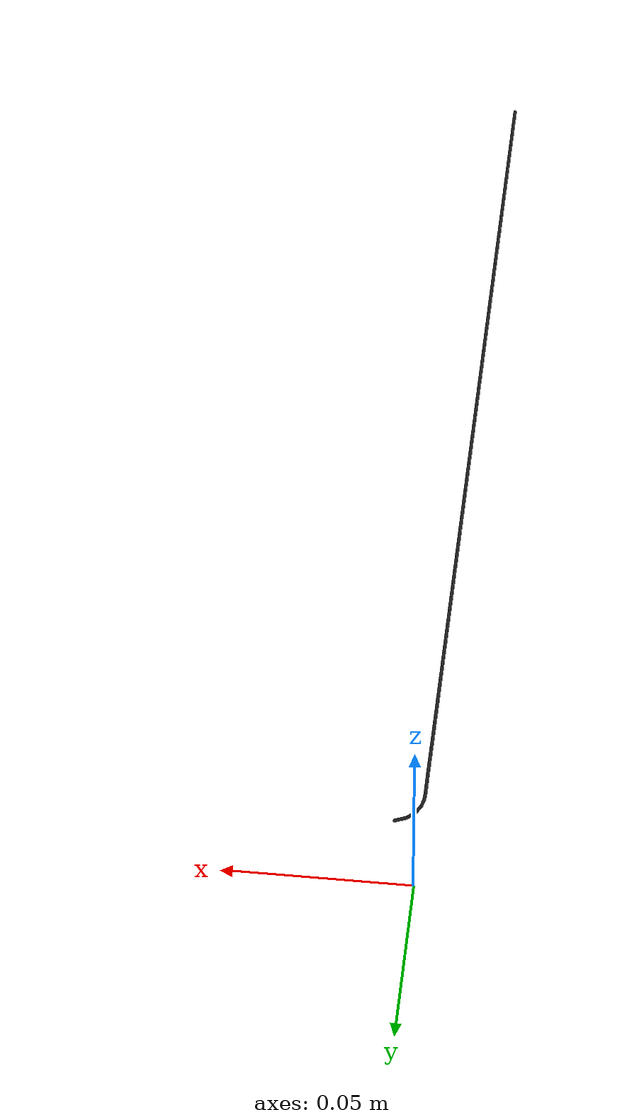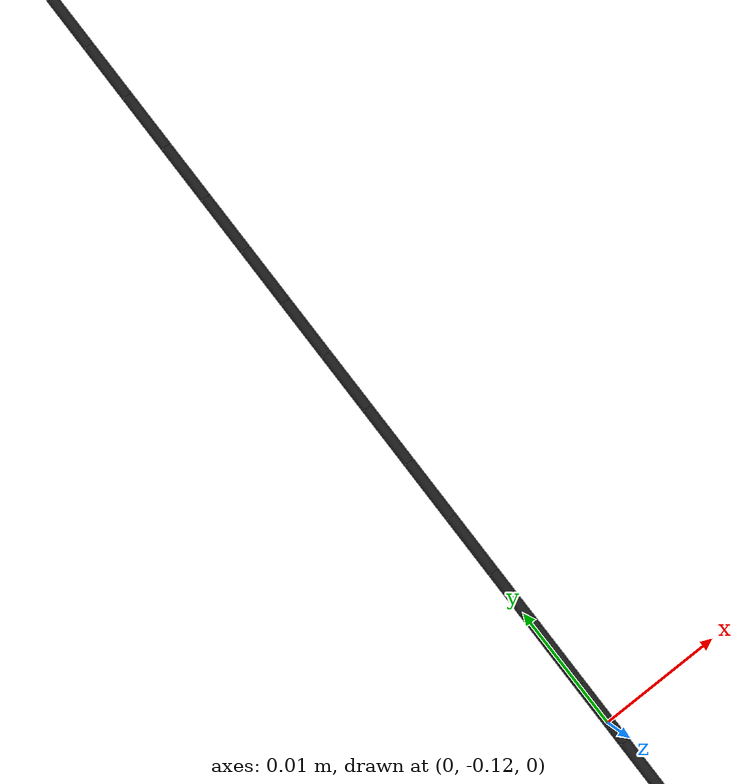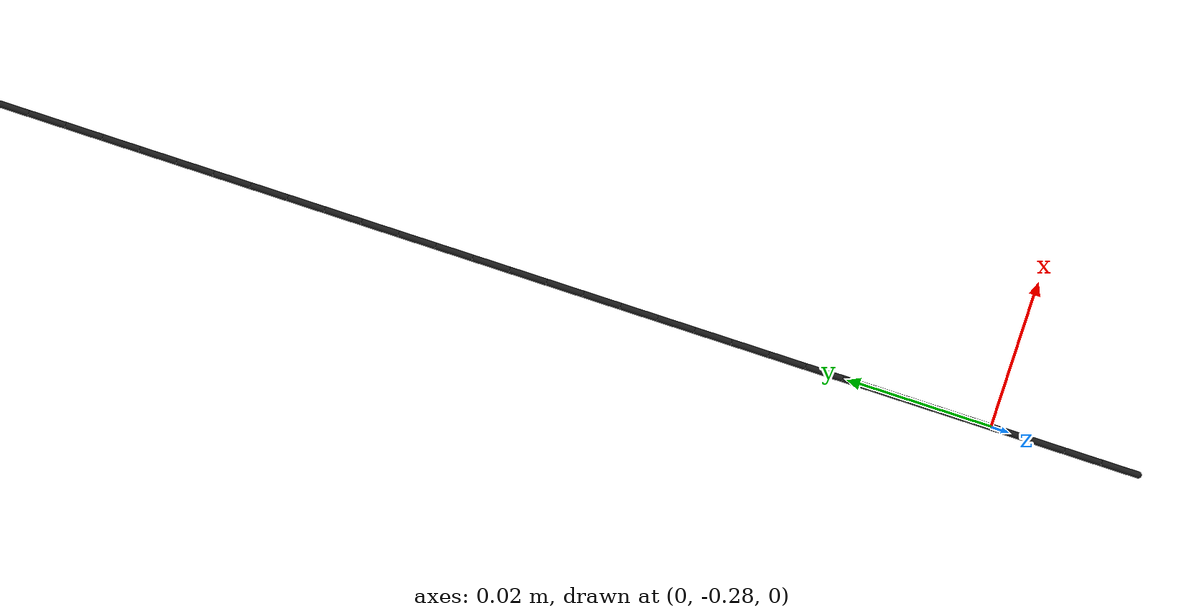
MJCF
<mujoco model="guidewire">
    <compiler angle="radian"/>

    <default>
        <default class="guidewire_tip">
            <geom type="capsule" condim="3" margin="0.003"/>
            <default class="guidewire">
                <geom rgba="0.1 0.1 0.1 1"/>
            </default>
            <default class="tip">
                <geom rgba="0.1 0.1 0.1 1"/>
            </default>
        </default>
    </default>

    <extension>
        <plugin plugin="mujoco.elasticity.cable">
            <instance name="compositeguidewire">
                <config key="bend" value="2e8"/>
                <config key="vmax" value="0.05"/>
            </instance>
            <instance name="compositetip">
                <config key="bend" value="5e6"/>
                <config key="vmax" value="0.05"/>
            </instance>
        </plugin>
    </extension>

    <actuator>
        <general name="slider" joint="slider" ctrlrange="-0.18 0.18" forcerange="-0.1 0.1" dyntype="filterexact" dynprm="0.1 0 0 0 0 0 0 0 0 0" biastype="affine" gainprm="60" biasprm="0 -60"/>
        <general name="rotator" joint="rotator" forcerange="-10 10" dyntype="filterexact" dynprm="0.1 0 0 0 0 0 0 0 0 0" biastype="affine" gainprm="100" biasprm="0 -100"/>
    </actuator>

    <custom>
        <text name="composite_guidewire" data="rope_guidewire"/>
        <text name="composite_tip" data="rope_tip"/>
    </custom>

    <worldbody>
        <frame>
            <body name="guidewire" childclass="guidewire" pos="0 -0.3 0.002" quat="0.707107 0 0 0.707107">
                <joint name="slider" pos="0 0 0" axis="1 0 0" type="slide" limited="true" range="-0.2 0.2" damping="5"/>
                <joint name="rotator" pos="0 0 0" axis="1 0 0" damping="5"/>
                <body name="guidewireB_first">
                    <geom name="guidewireG0" size="0.000445 0.00255102" pos="0.00255102 0 0" quat="0.707107 0 -0.707107 0" />
                    <site name="guidewireS_first" pos="0 0 0" group="3"/>
                    <plugin instance="compositeguidewire"/>
                    <body name="guidewireB_1" pos="0.00510204 0 0">
                        <joint name="guidewireJ_1" pos="0 0 0" type="ball" group="3" actuatorfrclimited="false" damping="0.015"/>
                        <geom name="guidewireG1" size="0.000445 0.00255102" pos="0.00255102 0 0" quat="0.707107 0 -0.707107 0"  />
                        <plugin instance="compositeguidewire"/>
                        <body name="guidewireB_2" pos="0.00510204 0 0">
                            <joint name="guidewireJ_2" pos="0 0 0" type="ball" group="3" actuatorfrclimited="false" damping="0.015"/>
                            <geom name="guidewireG2" size="0.000445 0.00255102" pos="0.00255102 0 0" quat="0.707107 0 -0.707107 0" />
                            <plugin instance="compositeguidewire"/>
                            <body name="guidewireB_3" pos="0.00510204 0 0">
                                <joint name="guidewireJ_3" pos="0 0 0" type="ball" group="3" actuatorfrclimited="false" damping="0.015"/>
                                <geom name="guidewireG3" size="0.000445 0.00255102" pos="0.00255102 0 0" quat="0.707107 0 -0.707107 0"/>
                                <plugin instance="compositeguidewire"/>
                                <body name="guidewireB_4" pos="0.00510204 0 0">
                                    <joint name="guidewireJ_4" pos="0 0 0" type="ball" group="3" actuatorfrclimited="false" damping="0.015"/>
                                    <geom name="guidewireG4" size="0.000445 0.00255102" pos="0.00255102 0 0" quat="0.707107 0 -0.707107 0"/>
                                    <plugin instance="compositeguidewire"/>
                                    <body name="guidewireB_5" pos="0.00510204 0 0">
                                        <joint name="guidewireJ_5" pos="0 0 0" type="ball" group="3" actuatorfrclimited="false" damping="0.015"/>
                                        <geom name="guidewireG5" size="0.000445 0.00255102" pos="0.00255102 0 0" quat="0.707107 0 -0.707107 0"/>
                                        <plugin instance="compositeguidewire"/>
                                        <body name="guidewireB_6" pos="0.00510204 0 0">
                                            <joint name="guidewireJ_6" pos="0 0 0" type="ball" group="3" actuatorfrclimited="false" damping="0.015"/>
                                            <geom name="guidewireG6" size="0.000445 0.00255102" pos="0.00255102 0 0" quat="0.707107 0 -0.707107 0"/>
                                            <plugin instance="compositeguidewire"/>
                                            <body name="guidewireB_7" pos="0.00510204 0 0">
                                                <joint name="guidewireJ_7" pos="0 0 0" type="ball" group="3" actuatorfrclimited="false" damping="0.015"/>
                                                <geom name="guidewireG7" size="0.000445 0.00255102" pos="0.00255102 0 0" quat="0.707107 0 -0.707107 0"/>
                                                <plugin instance="compositeguidewire"/>
                                                <body name="guidewireB_8" pos="0.00510204 0 0">
                                                    <joint name="guidewireJ_8" pos="0 0 0" type="ball" group="3" actuatorfrclimited="false" damping="0.015"/>
                                                    <geom name="guidewireG8" size="0.000445 0.00255102" pos="0.00255102 0 0" quat="0.707107 0 -0.707107 0"/>
                                                    <plugin instance="compositeguidewire"/>
                                                    <body name="guidewireB_9" pos="0.00510204 0 0">
                                                        <joint name="guidewireJ_9" pos="0 0 0" type="ball" group="3" actuatorfrclimited="false" damping="0.015"/>
                                                        <geom name="guidewireG9" size="0.000445 0.00255102" pos="0.00255102 0 0" quat="0.707107 0 -0.707107 0"/>
                                                        <plugin instance="compositeguidewire"/>
                                                        <body name="guidewireB_10" pos="0.00510204 0 0">
                                                            <joint name="guidewireJ_10" pos="0 0 0" type="ball" group="3" actuatorfrclimited="false" damping="0.015"/>
                                                            <geom name="guidewireG10" size="0.000445 0.00255102" pos="0.00255102 0 0" quat="0.707107 0 -0.707107 0"/>
                                                            <plugin instance="compositeguidewire"/>
                                                            <body name="guidewireB_11" pos="0.00510204 0 0">
                                                                <joint name="guidewireJ_11" pos="0 0 0" type="ball" group="3" actuatorfrclimited="false" damping="0.015"/>
                                                                <geom name="guidewireG11" size="0.000445 0.00255102" pos="0.00255102 0 0" quat="0.707107 0 -0.707107 0"/>
                                                                <plugin instance="compositeguidewire"/>
                                                                <body name="guidewireB_12" pos="0.00510204 0 0">
                                                                    <joint name="guidewireJ_12" pos="0 0 0" type="ball" group="3" actuatorfrclimited="false" damping="0.015"/>
                                                                    <geom name="guidewireG12" size="0.000445 0.00255102" pos="0.00255102 0 0" quat="0.707107 0 -0.707107 0"/>
                                                                    <plugin instance="compositeguidewire"/>
                                                                    <body name="guidewireB_13" pos="0.00510204 0 0">
                                                                        <joint name="guidewireJ_13" pos="0 0 0" type="ball" group="3" actuatorfrclimited="false" damping="0.015"/>
                                                                        <geom name="guidewireG13" size="0.000445 0.00255102" pos="0.00255102 0 0" quat="0.707107 0 -0.707107 0"/>
                                                                        <plugin instance="compositeguidewire"/>
                                                                        <body name="guidewireB_14" pos="0.00510205 0 0">
                                                                            <joint name="guidewireJ_14" pos="0 0 0" type="ball" group="3" actuatorfrclimited="false" damping="0.015"/>
                                                                            <geom name="guidewireG14" size="0.000445 0.00255102" pos="0.00255102 0 0" quat="0.707107 0 -0.707107 0"/>
                                                                            <plugin instance="compositeguidewire"/>
                                                                            <body name="guidewireB_15" pos="0.00510204 0 0">
                                                                                <joint name="guidewireJ_15" pos="0 0 0" type="ball" group="3" actuatorfrclimited="false" damping="0.015"/>
                                                                                <geom name="guidewireG15" size="0.000445 0.00255102" pos="0.00255102 0 0" quat="0.707107 0 -0.707107 0"/>
                                                                                <plugin instance="compositeguidewire"/>
                                                                                <body name="guidewireB_16" pos="0.00510204 0 0">
                                                                                    <joint name="guidewireJ_16" pos="0 0 0" type="ball" group="3" actuatorfrclimited="false" damping="0.015"/>
                                                                                    <geom name="guidewireG16" size="0.000445 0.00255102" pos="0.00255102 0 0" quat="0.707107 0 -0.707107 0" />
                                                                                    <plugin instance="compositeguidewire"/>
                                                                                    <body name="guidewireB_17" pos="0.00510205 0 0">
                                                                                        <joint name="guidewireJ_17" pos="0 0 0" type="ball" group="3" actuatorfrclimited="false" damping="0.015"/>
                                                                                        <geom name="guidewireG17" size="0.000445 0.00255102" pos="0.00255102 0 0" quat="0.707107 0 -0.707107 0"/>
                                                                                        <plugin instance="compositeguidewire"/>
                                                                                        <body name="guidewireB_18" pos="0.00510204 0 0">
                                                                                            <joint name="guidewireJ_18" pos="0 0 0" type="ball" group="3" actuatorfrclimited="false" damping="0.015"/>
                                                                                            <geom name="guidewireG18" size="0.000445 0.00255102" pos="0.00255102 0 0" quat="0.707107 0 -0.707107 0" />
                                                                                            <plugin instance="compositeguidewire"/>
                                                                                            <body name="guidewireB_19" pos="0.00510204 0 0">
                                                                                                <joint name="guidewireJ_19" pos="0 0 0" type="ball" group="3" actuatorfrclimited="false" damping="0.015"/>
                                                                                                <geom name="guidewireG19" size="0.000445 0.00255102" pos="0.00255102 0 0" quat="0.707107 0 -0.707107 0"/>
                                                                                                <plugin instance="compositeguidewire"/>
                                                                                                <body name="guidewireB_20" pos="0.00510205 0 0">
                                                                                                    <joint name="guidewireJ_20" pos="0 0 0" type="ball" group="3" actuatorfrclimited="false" damping="0.015"/>
                                                                                                    <geom name="guidewireG20" size="0.000445 0.00255102" pos="0.00255102 0 0" quat="0.707107 0 -0.707107 0"/>
                                                                                                    <plugin instance="compositeguidewire"/>
                                                                                                    <body name="guidewireB_21" pos="0.00510204 0 0">
                                                                                                        <joint name="guidewireJ_21" pos="0 0 0" type="ball" group="3" actuatorfrclimited="false" damping="0.015"/>
                                                                                                        <geom name="guidewireG21" size="0.000445 0.00255102" pos="0.00255102 0 0" quat="0.707107 0 -0.707107 0" />
                                                                                                        <plugin instance="compositeguidewire"/>
                                                                                                        <body name="guidewireB_22" pos="0.00510204 0 0">
                                                                                                            <joint name="guidewireJ_22" pos="0 0 0" type="ball" group="3" actuatorfrclimited="false" damping="0.015"/>
                                                                                                            <geom name="guidewireG22" size="0.000445 0.00255102" pos="0.00255102 0 0" quat="0.707107 0 -0.707107 0"/>
                                                                                                            <plugin instance="compositeguidewire"/>
                                                                                                            <body name="guidewireB_23" pos="0.00510205 0 0">
                                                                                                                <joint name="guidewireJ_23" pos="0 0 0" type="ball" group="3" actuatorfrclimited="false" damping="0.015"/>
                                                                                                                <geom name="guidewireG23" size="0.000445 0.00255102" pos="0.00255102 0 0" quat="0.707107 0 -0.707107 0" />
                                                                                                                <plugin instance="compositeguidewire"/>
                                                                                                                <body name="guidewireB_24" pos="0.00510204 0 0">
                                                                                                                    <joint name="guidewireJ_24" pos="0 0 0" type="ball" group="3" actuatorfrclimited="false" damping="0.015"/>
                                                                                                                    <geom name="guidewireG24" size="0.000445 0.00255102" pos="0.00255102 0 0" quat="0.707107 0 -0.707107 0"/>
                                                                                                                    <plugin instance="compositeguidewire"/>
                                                                                                                    <body name="guidewireB_25" pos="0.00510204 0 0">
                                                                                                                        <joint name="guidewireJ_25" pos="0 0 0" type="ball" group="3" actuatorfrclimited="false" damping="0.015"/>
                                                                                                                        <geom name="guidewireG25" size="0.000445 0.00255102" pos="0.00255102 0 0" quat="0.707107 0 -0.707107 0" />
                                                                                                                        <plugin instance="compositeguidewire"/>
                                                                                                                        <body name="guidewireB_26" pos="0.00510204 0 0">
                                                                                                                            <joint name="guidewireJ_26" pos="0 0 0" type="ball" group="3" actuatorfrclimited="false" damping="0.015"/>
                                                                                                                            <geom name="guidewireG26" size="0.000445 0.00255102" pos="0.00255102 0 0" quat="0.707107 0 -0.707107 0"/>
                                                                                                                            <plugin instance="compositeguidewire"/>
                                                                                                                            <body name="guidewireB_27" pos="0.00510204 0 0">
                                                                                                                                <joint name="guidewireJ_27" pos="0 0 0" type="ball" group="3" actuatorfrclimited="false" damping="0.015"/>
                                                                                                                                <geom name="guidewireG27" size="0.000445 0.00255103" pos="0.00255103 0 0" quat="0.707107 0 -0.707107 0"/>
                                                                                                                                <plugin instance="compositeguidewire"/>
                                                                                                                                <body name="guidewireB_28" pos="0.00510205 0 0">
                                                                                                                                    <joint name="guidewireJ_28" pos="0 0 0" type="ball" group="3" actuatorfrclimited="false" damping="0.015"/>
                                                                                                                                    <geom name="guidewireG28" size="0.000445 0.00255102" pos="0.00255102 0 0" quat="0.707107 0 -0.707107 0"/>
                                                                                                                                    <plugin instance="compositeguidewire"/>
                                                                                                                                    <body name="guidewireB_29" pos="0.00510204 0 0">
                                                                                                                                        <joint name="guidewireJ_29" pos="0 0 0" type="ball" group="3" actuatorfrclimited="false" damping="0.015"/>
                                                                                                                                        <geom name="guidewireG29" size="0.000445 0.00255102" pos="0.00255102 0 0" quat="0.707107 0 -0.707107 0" />
                                                                                                                                        <plugin instance="compositeguidewire"/>
                                                                                                                                        <body name="guidewireB_30" pos="0.00510204 0 0">
                                                                                                                                            <joint name="guidewireJ_30" pos="0 0 0" type="ball" group="3" actuatorfrclimited="false" damping="0.015"/>
                                                                                                                                            <geom name="guidewireG30" size="0.000445 0.00255102" pos="0.00255102 0 0" quat="0.707107 0 -0.707107 0" />
                                                                                                                                            <plugin instance="compositeguidewire"/>
                                                                                                                                            <body name="guidewireB_31" pos="0.00510204 0 0">
                                                                                                                                                <joint name="guidewireJ_31" pos="0 0 0" type="ball" group="3" actuatorfrclimited="false" damping="0.015"/>
                                                                                                                                                <geom name="guidewireG31" size="0.000445 0.00255102" pos="0.00255102 0 0" quat="0.707107 0 -0.707107 0"/>
                                                                                                                                                <plugin instance="compositeguidewire"/>
                                                                                                                                                <body name="guidewireB_32" pos="0.00510204 0 0">
                                                                                                                                                    <joint name="guidewireJ_32" pos="0 0 0" type="ball" group="3" actuatorfrclimited="false" damping="0.015"/>
                                                                                                                                                    <geom name="guidewireG32" size="0.000445 0.00255102" pos="0.00255102 0 0" quat="0.707107 0 -0.707107 0" />
                                                                                                                                                    <plugin instance="compositeguidewire"/>
                                                                                                                                                    <body name="guidewireB_33" pos="0.00510204 0 0">
                                                                                                                                                        <joint name="guidewireJ_33" pos="0 0 0" type="ball" group="3" actuatorfrclimited="false" damping="0.015"/>
                                                                                                                                                        <geom name="guidewireG33" size="0.000445 0.00255103" pos="0.00255103 0 0" quat="0.707107 0 -0.707107 0" />
                                                                                                                                                        <plugin instance="compositeguidewire"/>
                                                                                                                                                        <body name="guidewireB_34" pos="0.00510205 0 0">
                                                                                                                                                            <joint name="guidewireJ_34" pos="0 0 0" type="ball" group="3" actuatorfrclimited="false" damping="0.015"/>
                                                                                                                                                            <geom name="guidewireG34" size="0.000445 0.00255102" pos="0.00255102 0 0" quat="0.707107 0 -0.707107 0"/>
                                                                                                                                                            <plugin instance="compositeguidewire"/>
                                                                                                                                                            <body name="guidewireB_35" pos="0.00510204 0 0">
                                                                                                                                                                <joint name="guidewireJ_35" pos="0 0 0" type="ball" group="3" actuatorfrclimited="false" damping="0.015"/>
                                                                                                                                                                <geom name="guidewireG35" size="0.000445 0.00255102" pos="0.00255102 0 0" quat="0.707107 0 -0.707107 0"/>
                                                                                                                                                                <plugin instance="compositeguidewire"/>
                                                                                                                                                                <body name="guidewireB_36" pos="0.00510204 0 0">
                                                                                                                                                                    <joint name="guidewireJ_36" pos="0 0 0" type="ball" group="3" actuatorfrclimited="false" damping="0.015"/>
                                                                                                                                                                    <geom name="guidewireG36" size="0.000445 0.00255102" pos="0.00255102 0 0" quat="0.707107 0 -0.707107 0" />
                                                                                                                                                                    <plugin instance="compositeguidewire"/>
                                                                                                                                                                    <body name="guidewireB_37" pos="0.00510204 0 0">
                                                                                                                                                                        <joint name="guidewireJ_37" pos="0 0 0" type="ball" group="3" actuatorfrclimited="false" damping="0.015"/>
                                                                                                                                                                        <geom name="guidewireG37" size="0.000445 0.00255102" pos="0.00255102 0 0" quat="0.707107 0 -0.707107 0" />
                                                                                                                                                                        <plugin instance="compositeguidewire"/>
                                                                                                                                                                        <body name="guidewireB_38" pos="0.00510204 0 0">
                                                                                                                                                                            <joint name="guidewireJ_38" pos="0 0 0" type="ball" group="3" actuatorfrclimited="false" damping="0.015"/>
                                                                                                                                                                            <geom name="guidewireG38" size="0.000445 0.00255102" pos="0.00255102 0 0" quat="0.707107 0 -0.707107 0" />
                                                                                                                                                                            <plugin instance="compositeguidewire"/>
                                                                                                                                                                            <body name="guidewireB_39" pos="0.00510204 0 0">
                                                                                                                                                                                <joint name="guidewireJ_39" pos="0 0 0" type="ball" group="3" actuatorfrclimited="false" damping="0.015"/>
                                                                                                                                                                                <geom name="guidewireG39" size="0.000445 0.00255103" pos="0.00255103 0 0" quat="0.707107 0 -0.707107 0"/>
                                                                                                                                                                                <plugin instance="compositeguidewire"/>
                                                                                                                                                                                <body name="guidewireB_40" pos="0.00510205 0 0">
                                                                                                                                                                                    <joint name="guidewireJ_40" pos="0 0 0" type="ball" group="3" actuatorfrclimited="false" damping="0.015"/>
                                                                                                                                                                                    <geom name="guidewireG40" size="0.000445 0.00255102" pos="0.00255102 0 0" quat="0.707107 0 -0.707107 0"/>
                                                                                                                                                                                    <plugin instance="compositeguidewire"/>
                                                                                                                                                                                    <body name="guidewireB_41" pos="0.00510204 0 0">
                                                                                                                                                                                        <joint name="guidewireJ_41" pos="0 0 0" type="ball" group="3" actuatorfrclimited="false" damping="0.015"/>
                                                                                                                                                                                        <geom name="guidewireG41" size="0.000445 0.00255102" pos="0.00255102 0 0" quat="0.707107 0 -0.707107 0" />
                                                                                                                                                                                        <plugin instance="compositeguidewire"/>
                                                                                                                                                                                        <body name="guidewireB_42" pos="0.00510204 0 0">
                                                                                                                                                                                            <joint name="guidewireJ_42" pos="0 0 0" type="ball" group="3" actuatorfrclimited="false" damping="0.015"/>
                                                                                                                                                                                            <geom name="guidewireG42" size="0.000445 0.00255102" pos="0.00255102 0 0" quat="0.707107 0 -0.707107 0"/>
                                                                                                                                                                                            <plugin instance="compositeguidewire"/>
                                                                                                                                                                                            <body name="guidewireB_43" pos="0.00510204 0 0">
                                                                                                                                                                                                <joint name="guidewireJ_43" pos="0 0 0" type="ball" group="3" actuatorfrclimited="false" damping="0.015"/>
                                                                                                                                                                                                <geom name="guidewireG43" size="0.000445 0.00255102" pos="0.00255102 0 0" quat="0.707107 0 -0.707107 0"/>
                                                                                                                                                                                                <plugin instance="compositeguidewire"/>
                                                                                                                                                                                                <body name="guidewireB_44" pos="0.00510204 0 0">
                                                                                                                                                                                                    <joint name="guidewireJ_44" pos="0 0 0" type="ball" group="3" actuatorfrclimited="false" damping="0.015"/>
                                                                                                                                                                                                    <geom name="guidewireG44" size="0.000445 0.00255102" pos="0.00255102 0 0" quat="0.707107 0 -0.707107 0"/>
                                                                                                                                                                                                    <plugin instance="compositeguidewire"/>
                                                                                                                                                                                                    <body name="guidewireB_45" pos="0.00510204 0 0">
                                                                                                                                                                                                        <joint name="guidewireJ_45" pos="0 0 0" type="ball" group="3" actuatorfrclimited="false" damping="0.015"/>
                                                                                                                                                                                                        <geom name="guidewireG45" size="0.000445 0.00255103" pos="0.00255103 0 0" quat="0.707107 0 -0.707107 0"/>
                                                                                                                                                                                                        <plugin instance="compositeguidewire"/>
                                                                                                                                                                                                        <body name="guidewireB_46" pos="0.00510205 0 0">
                                                                                                                                                                                                            <joint name="guidewireJ_46" pos="0 0 0" type="ball" group="3" actuatorfrclimited="false" damping="0.015"/>
                                                                                                                                                                                                            <geom name="guidewireG46" size="0.000445 0.00255102" pos="0.00255102 0 0" quat="0.707107 0 -0.707107 0" />
                                                                                                                                                                                                            <plugin instance="compositeguidewire"/>
                                                                                                                                                                                                            <body name="guidewireB_47" pos="0.00510204 0 0">
                                                                                                                                                                                                                <joint name="guidewireJ_47" pos="0 0 0" type="ball" group="3" actuatorfrclimited="false" damping="0.015"/>
                                                                                                                                                                                                                <geom name="guidewireG47" size="0.000445 0.00255102" pos="0.00255102 0 0" quat="0.707107 0 -0.707107 0" />
                                                                                                                                                                                                                <plugin instance="compositeguidewire"/>
                                                                                                                                                                                                                <body name="guidewireB_last" pos="0.00510204 0 0">
                                                                                                                                                                                                                    <joint name="guidewireJ_last" pos="0 0 0" type="ball" group="3" actuatorfrclimited="false" damping="0.015"/>
                                                                                                                                                                                                                    <geom name="guidewireG48" size="0.000445 0.00255102" pos="0.00255102 0 0" quat="0.707107 0 -0.707107 0"/>
                                                                                                                                                                                                                    <site name="guidewireS_last" pos="0.00510204 0 0" group="3"/>
                                                                                                                                                                                                                    <plugin instance="compositeguidewire"/>
                                                                                                                                                                                                                    <body name="tip" childclass="tip" pos="0.00510204 0 0" quat="0 -0.707107  -0.707107 0">
                                                                                                                                                                                                                        <plugin instance="compositetip"/>
                                                                                                                                                                                                                        <body name="tipB_first" pos="-0.007 0.03 0" quat="0 0.978382 -0.206808 0">
                                                                                                                                                                                                                            <joint name="tipJ_first" pos="0 0 0" type="ball" group="3" actuatorfrclimited="false" damping="0.015"/>
                                                                                                                                                                                                                            <geom name="tipG0" size="0.000445 0.00167913" pos="0.00167913 0 0" quat="0.707107 0 -0.707107 0"/>
                                                                                                                                                                                                                            <site name="tipS_first" pos="0 0 0" group="3"/>
                                                                                                                                                                                                                            <plugin instance="compositetip"/>
                                                                                                                                                                                                                            <body name="tipB_1" pos="0.00335826 0 0" quat="0.984832 0 0 0.173512">
                                                                                                                                                                                                                                <joint name="tipJ_1" pos="0 0 0" type="ball" group="3" actuatorfrclimited="false" damping="0.015"/>
                                                                                                                                                                                                                                <geom name="tipG1" size="0.000445 0.0014152" pos="0.0014152 0 0" quat="0.707107 0 -0.707107 0"/>
                                                                                                                                                                                                                                <plugin instance="compositetip"/>
                                                                                                                                                                                                                                <body name="tipB_2" pos="0.00283041 0 0" quat="0.987304 0 0 0.15884">
                                                                                                                                                                                                                                    <joint name="tipJ_2" pos="0 0 0" type="ball" group="3" actuatorfrclimited="false" damping="0.015"/>
                                                                                                                                                                                                                                    <geom name="tipG2" size="0.000445 0.0012901" pos="0.0012901 0 0" quat="0.707107 0 -0.707107 0"/>
                                                                                                                                                                                                                                    <plugin instance="compositetip"/>
                                                                                                                                                                                                                                    <body name="tipB_3" pos="0.00258019 0 0" quat="0.992355 0 0 0.12342">
                                                                                                                                                                                                                                        <joint name="tipJ_3" pos="0 0 0" type="ball" group="3" actuatorfrclimited="false" damping="0.015"/>
                                                                                                                                                                                                                                        <geom name="tipG3" size="0.000445 0.0011939" pos="0.0011939 0 0" quat="0.707107 0 -0.707107 0"/>
                                                                                                                                                                                                                                        <plugin instance="compositetip"/>
                                                                                                                                                                                                                                        <body name="tipB_4" pos="0.00238781 0 0" quat="0.995832 0 0 0.0912064">
                                                                                                                                                                                                                                            <joint name="tipJ_4" pos="0 0 0" type="ball" group="3" actuatorfrclimited="false" damping="0.015"/>
                                                                                                                                                                                                                                            <geom name="tipG4" size="0.000445 0.00104115" pos="0.00104115 0 0" quat="0.707107 0 -0.707107 0"/>
                                                                                                                                                                                                                                            <plugin instance="compositetip"/>
                                                                                                                                                                                                                                            <body name="tipB_5" pos="0.00208229 0 0" quat="-0.999449 0 0 -0.0332065">
                                                                                                                                                                                                                                                <joint name="tipJ_5" pos="0 0 0" type="ball" group="3" actuatorfrclimited="false" damping="0.015"/>
                                                                                                                                                                                                                                                <geom name="tipG5" size="0.000445 0.00137157" pos="0.00137157 0 0" quat="0.707107 0 -0.707107 0"/>
                                                                                                                                                                                                                                                <plugin instance="compositetip"/>
                                                                                                                                                                                                                                                <body name="tipB_6" pos="0.00274314 0 0" quat="0.999992 0 0 -0.00411581">
                                                                                                                                                                                                                                                    <joint name="tipJ_6" pos="0 0 0" type="ball" group="3" actuatorfrclimited="false" damping="0.015"/>
                                                                                                                                                                                                                                                    <geom name="tipG6" size="0.000445 0.0020245" pos="0.0020245 0 0" quat="0.707107 0 -0.707107 0" />
                                                                                                                                                                                                                                                    <plugin instance="compositetip"/>
                                                                                                                                                                                                                                                    <body name="tipB_7" pos="0.00404901 0 0" quat="-0.999998 0 0 0.00184296">
                                                                                                                                                                                                                                                        <joint name="tipJ_7" pos="0 0 0" type="ball" group="3" actuatorfrclimited="false" damping="0.015"/>
                                                                                                                                                                                                                                                        <geom name="tipG7" size="0.000445 0.002339" pos="0.002339 0 0" quat="0.707107 0 -0.707107 0"/>
                                                                                                                                                                                                                                                        <plugin instance="compositetip"/>
                                                                                                                                                                                                                                                        <body name="tipB_8" pos="0.00467801 0 0" quat="1 0 0 -0.000657462">
                                                                                                                                                                                                                                                            <joint name="tipJ_8" pos="0 0 0" type="ball" group="3" actuatorfrclimited="false" damping="0.015"/>
                                                                                                                                                                                                                                                            <geom name="tipG8" size="0.000445 0.00231401" pos="0.00231401 0 0" quat="0.707107 0 -0.707107 0" />
                                                                                                                                                                                                                                                            <plugin instance="compositetip"/>
                                                                                                                                                                                                                                                            <body name="tipB_last" pos="0.00462802 0 0" quat="1 0 0 -0.000281416">
                                                                                                                                                                                                                                                                <joint name="tipJ_last" pos="0 0 0" type="ball" group="3" actuatorfrclimited="false" damping="0.015"/>
                                                                                                                                                                                                                                                                <geom name="tipG9" size="0.000445 0.00195101" pos="0.00195101 0 0" quat="0.707107 0 -0.707107 0" />
                                                                                                                                                                                                                                                                <site name="tipS_last" pos="0.00390203 0 0" group="3"/>
                                                                                                                                                                                                                                                                <plugin instance="compositetip"/>
                                                                                                                                                                                                                                                            </body>
                                                                                                                                                                                                                                                        </body>
                                                                                                                                                                                                                                                    </body>
                                                                                                                                                                                                                                                </body>
                                                                                                                                                                                                                                            </body>
                                                                                                                                                                                                                                        </body>
                                                                                                                                                                                                                                    </body>
                                                                                                                                                                                                                                </body>
                                                                                                                                                                                                                            </body>
                                                                                                                                                                                                                        </body>
                                                                                                                                                                                                                    </body>
                                                                                                                                                                                                                </body>
                                                                                                                                                                                                            </body>
                                                                                                                                                                                                        </body>
                                                                                                                                                                                                    </body>
                                                                                                                                                                                                </body>
                                                                                                                                                                                            </body>
                                                                                                                                                                                        </body>
                                                                                                                                                                                    </body>
                                                                                                                                                                                </body>
                                                                                                                                                                            </body>
                                                                                                                                                                        </body>
                                                                                                                                                                    </body>
                                                                                                                                                                </body>
                                                                                                                                                            </body>
                                                                                                                                                        </body>
                                                                                                                                                    </body>
                                                                                                                                                </body>
                                                                                                                                            </body>
                                                                                                                                        </body>
                                                                                                                                    </body>
                                                                                                                                </body>
                                                                                                                            </body>
                                                                                                                        </body>
                                                                                                                    </body>
                                                                                                                </body>
                                                                                                            </body>
                                                                                                        </body>
                                                                                                    </body>
                                                                                                </body>
                                                                                            </body>
                                                                                        </body>
                                                                                    </body>
                                                                                </body>
                                                                            </body>
                                                                        </body>
                                                                    </body>
                                                                </body>
                                                            </body>
                                                        </body>

                                                    </body>
                                                </body>
                                            </body>
                                        </body>
                                    </body>
                                </body>
                            </body>
                        </body>
                    </body>
                </body>
            </body>
        </frame>
    </worldbody>

    <contact>
        <exclude body1="guidewireB_first" body2="guidewireB_1"/>
        <exclude body1="guidewireB_1" body2="guidewireB_2"/>
        <exclude body1="guidewireB_2" body2="guidewireB_3"/>
        <exclude body1="guidewireB_3" body2="guidewireB_4"/>
        <exclude body1="guidewireB_4" body2="guidewireB_5"/>
        <exclude body1="guidewireB_5" body2="guidewireB_6"/>
        <exclude body1="guidewireB_6" body2="guidewireB_7"/>
        <exclude body1="guidewireB_7" body2="guidewireB_8"/>
        <exclude body1="guidewireB_8" body2="guidewireB_9"/>
        <exclude body1="guidewireB_9" body2="guidewireB_10"/>
        <exclude body1="guidewireB_10" body2="guidewireB_11"/>
        <exclude body1="guidewireB_11" body2="guidewireB_12"/>
        <exclude body1="guidewireB_12" body2="guidewireB_13"/>
        <exclude body1="guidewireB_13" body2="guidewireB_14"/>
        <exclude body1="guidewireB_14" body2="guidewireB_15"/>
        <exclude body1="guidewireB_15" body2="guidewireB_16"/>
        <exclude body1="guidewireB_16" body2="guidewireB_17"/>
        <exclude body1="guidewireB_17" body2="guidewireB_18"/>
        <exclude body1="guidewireB_18" body2="guidewireB_19"/>
        <exclude body1="guidewireB_19" body2="guidewireB_20"/>
        <exclude body1="guidewireB_20" body2="guidewireB_21"/>
        <exclude body1="guidewireB_21" body2="guidewireB_22"/>
        <exclude body1="guidewireB_22" body2="guidewireB_23"/>
        <exclude body1="guidewireB_23" body2="guidewireB_24"/>
        <exclude body1="guidewireB_24" body2="guidewireB_25"/>
        <exclude body1="guidewireB_25" body2="guidewireB_26"/>
        <exclude body1="guidewireB_26" body2="guidewireB_27"/>
        <exclude body1="guidewireB_27" body2="guidewireB_28"/>
        <exclude body1="guidewireB_28" body2="guidewireB_29"/>
        <exclude body1="guidewireB_29" body2="guidewireB_30"/>
        <exclude body1="guidewireB_30" body2="guidewireB_31"/>
        <exclude body1="guidewireB_31" body2="guidewireB_32"/>
        <exclude body1="guidewireB_32" body2="guidewireB_33"/>
        <exclude body1="guidewireB_33" body2="guidewireB_34"/>
        <exclude body1="guidewireB_34" body2="guidewireB_35"/>
        <exclude body1="guidewireB_35" body2="guidewireB_36"/>
        <exclude body1="guidewireB_36" body2="guidewireB_37"/>
        <exclude body1="guidewireB_37" body2="guidewireB_38"/>
        <exclude body1="guidewireB_38" body2="guidewireB_39"/>
        <exclude body1="guidewireB_39" body2="guidewireB_40"/>
        <exclude body1="guidewireB_40" body2="guidewireB_41"/>
        <exclude body1="guidewireB_41" body2="guidewireB_42"/>
        <exclude body1="guidewireB_42" body2="guidewireB_43"/>
        <exclude body1="guidewireB_43" body2="guidewireB_44"/>
        <exclude body1="guidewireB_44" body2="guidewireB_45"/>
        <exclude body1="guidewireB_45" body2="guidewireB_46"/>
        <exclude body1="guidewireB_46" body2="guidewireB_47"/>
        <exclude body1="guidewireB_47" body2="guidewireB_last"/>
        <exclude body1="guidewireB_last" body2="tip"/>
        <exclude body1="tip" body2="tipB_first"/>
        <exclude body1="tipB_first" body2="tipB_1"/>
        <exclude body1="tipB_1" body2="tipB_2"/>
        <exclude body1="tipB_2" body2="tipB_3"/>
        <exclude body1="tipB_3" body2="tipB_4"/>
        <exclude body1="tipB_4" body2="tipB_5"/>
        <exclude body1="tipB_5" body2="tipB_6"/>
        <exclude body1="tipB_6" body2="tipB_7"/>
        <exclude body1="tipB_7" body2="tipB_8"/>
        <exclude body1="tipB_8" body2="tipB_last"/>

    </contact>

</mujoco>
